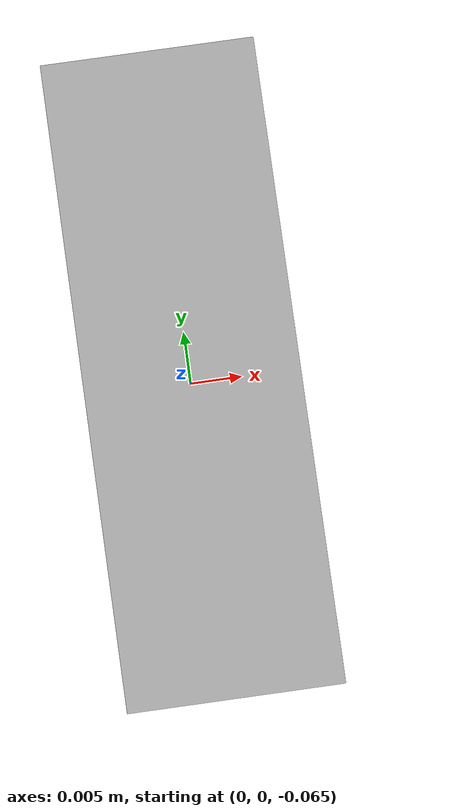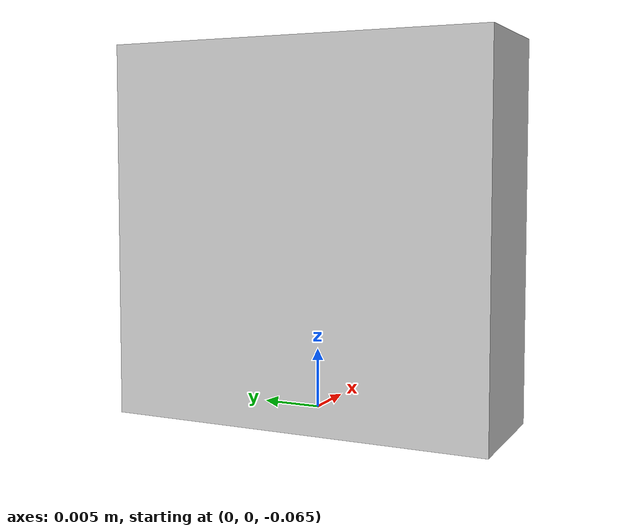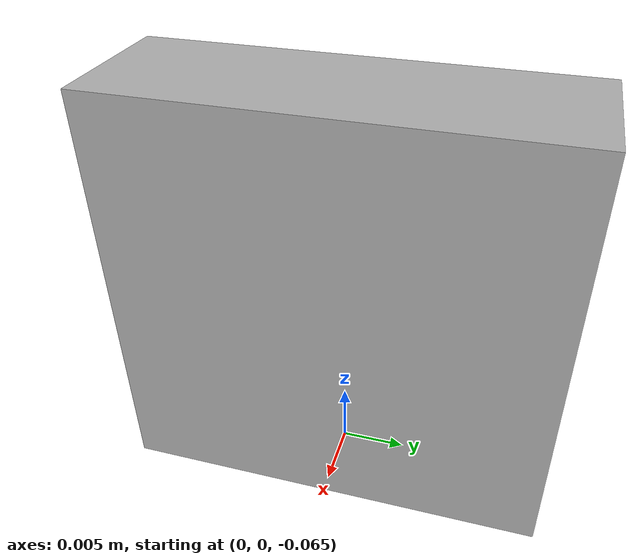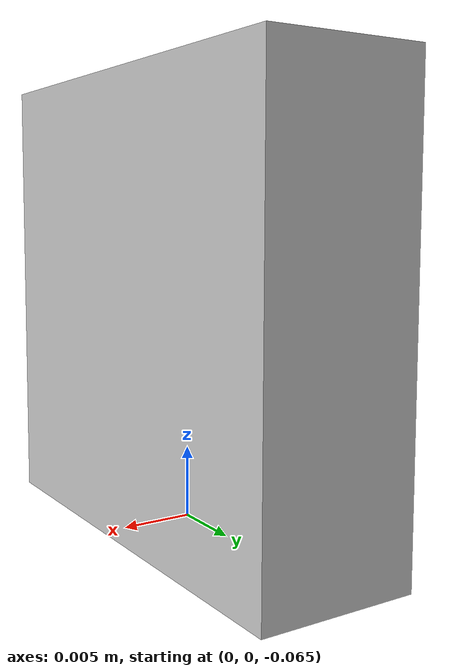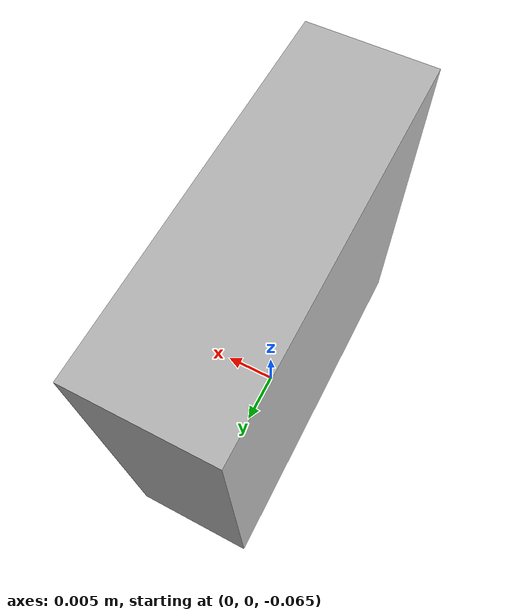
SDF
<?xml version="1.0" ?>
<sdf version="1.4">
  <model name="stone">
    <static>true</static>
    <pose>0 0 -0.05 0 -1.57 0</pose>
    <link name="link">
      <collision name="collision">
        <geometry>
          <mesh>
            <uri>model://stone/meshes/stone.obj</uri>
            <scale>0.1 0.3 0.1</scale>
          </mesh>
        </geometry>
        <surface>
          <friction>
            <ode>
              <mu>2</mu>
              <mu2>0.01</mu2>
            </ode>
          </friction>
        </surface>
      </collision>
      <visual name="visual">
        <geometry>
          <mesh>
            <uri>model://stone/meshes/stone.obj</uri>
            <scale>0.1 0.3 0.1</scale>
          </mesh>
        </geometry>
        <material>
          <script>
          	<uri>model://materials/scripts</uri>
          	<uri>model://materials/textures</uri>
          	<name>stone/floor</name>
          </script>
        </material>
      </visual>
    </link>
  </model>
</sdf>
